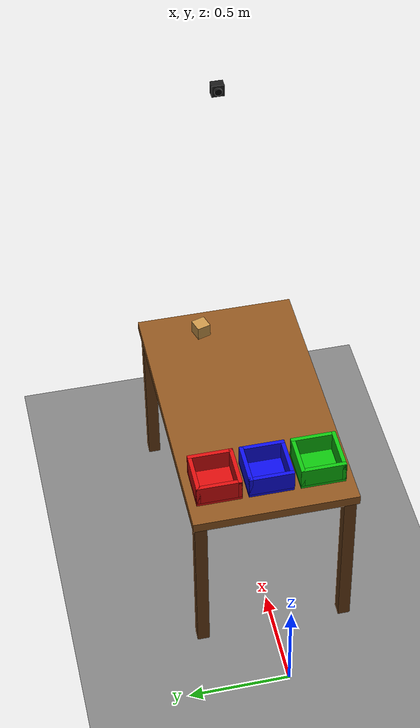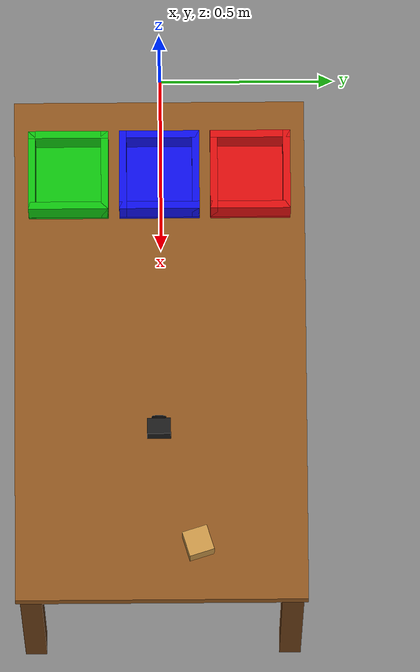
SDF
<sdf version="1.9">
 <world name="panda_sorting_world">
  <plugin filename="gz-sim-physics-system" name="gz::sim::systems::Physics"/>
  <plugin filename="gz-sim-user-commands-system" name="gz::sim::systems::UserCommands"/>
  <plugin filename="gz-sim-scene-broadcaster-system" name="gz::sim::systems::SceneBroadcaster"/>
  <plugin filename="gz-sim-sensors-system" name="gz::sim::systems::Sensors">
   <render_engine>ogre2</render_engine>
  </plugin>
  <physics name="default_physics" type="ode">
   <real_time_update_rate>1000.0</real_time_update_rate>
   <max_step_size>0.001</max_step_size>
   <real_time_factor>1</real_time_factor>
  </physics>
  <light name="sun" type="directional">
   <pose>0 0 10 0 0 0</pose>
   <diffuse>0.9 0.9 0.9 1</diffuse>
   <specular>0.3 0.3 0.3 1</specular>
   <direction>-0.5 0.1 -0.9</direction>
  </light>
  <light name="ambient_fill" type="directional">
   <cast_shadows>false</cast_shadows>
   <pose>0 0 8 0 0 0</pose>
   <diffuse>0.4 0.4 0.45 1</diffuse>
   <specular>0.0 0.0 0.0 1</specular>
   <direction>0.2 0.2 -1.0</direction>
  </light>
  <model name="ground_plane">
   <static>true</static>
   <link name="link">
    <collision name="collision">
     <geometry><plane><normal>0 0 1</normal><size>100 100</size></plane></geometry>
     <surface><friction><ode><mu>1.0</mu><mu2>1.0</mu2></ode></friction></surface>
    </collision>
    <visual name="visual">
     <geometry><plane><normal>0 0 1</normal><size>100 100</size></plane></geometry>
     <material>
      <ambient>0.45 0.45 0.45 1</ambient>
      <diffuse>0.50 0.50 0.50 1</diffuse>
      <specular>0.02 0.02 0.02 1</specular>
     </material>
    </visual>
   </link>
  </model>
  <model name="sorting_table">
   <static>true</static>
   <pose>1.0 0 0 0 0 0</pose>
   <link name="table_top">
    <pose>0 0 0.875 0 0 0</pose>
    <collision name="collision">
     <geometry><box><size>1.4 0.8 0.05</size></box></geometry>
     <surface><friction><ode><mu>0.8</mu><mu2>0.8</mu2></ode></friction></surface>
    </collision>
    <visual name="visual">
     <geometry><box><size>1.4 0.8 0.05</size></box></geometry>
     <material>
      <ambient>0.45 0.28 0.10 1</ambient>
      <diffuse>0.55 0.33 0.12 1</diffuse>
      <specular>0.15 0.10 0.05 1</specular>
      <pbr><metal><roughness>0.85</roughness><metalness>0.0</metalness></metal></pbr>
     </material>
    </visual>
   </link>
   <link name="leg_fr">
    <pose>0.65 -0.36 0.425 0 0 0</pose>
    <collision name="c"><geometry><box><size>0.06 0.06 0.85</size></box></geometry></collision>
    <visual name="v">
     <geometry><box><size>0.06 0.06 0.85</size></box></geometry>
     <material><ambient>0.35 0.20 0.07 1</ambient><diffuse>0.40 0.23 0.08 1</diffuse></material>
    </visual>
   </link>
   <link name="leg_fl">
    <pose>0.65 0.36 0.425 0 0 0</pose>
    <collision name="c"><geometry><box><size>0.06 0.06 0.85</size></box></geometry></collision>
    <visual name="v">
     <geometry><box><size>0.06 0.06 0.85</size></box></geometry>
     <material><ambient>0.35 0.20 0.07 1</ambient><diffuse>0.40 0.23 0.08 1</diffuse></material>
    </visual>
   </link>
   <link name="leg_br">
    <pose>-0.65 -0.36 0.425 0 0 0</pose>
    <collision name="c"><geometry><box><size>0.06 0.06 0.85</size></box></geometry></collision>
    <visual name="v">
     <geometry><box><size>0.06 0.06 0.85</size></box></geometry>
     <material><ambient>0.35 0.20 0.07 1</ambient><diffuse>0.40 0.23 0.08 1</diffuse></material>
    </visual>
   </link>
   <link name="leg_bl">
    <pose>-0.65 0.36 0.425 0 0 0</pose>
    <collision name="c"><geometry><box><size>0.06 0.06 0.85</size></box></geometry></collision>
    <visual name="v">
     <geometry><box><size>0.06 0.06 0.85</size></box></geometry>
     <material><ambient>0.35 0.20 0.07 1</ambient><diffuse>0.40 0.23 0.08 1</diffuse></material>
    </visual>
   </link>
  </model>
  <model name="small_box">
   <pose>1.55 0.10 0.935 0 0 0.3</pose>
   <link name="link">
    <inertial>
     <mass>0.15</mass>
     <inertia><ixx>0.00012</ixx><ixy>0</ixy><ixz>0</ixz><iyy>0.00012</iyy><iyz>0</iyz><izz>0.00012</izz></inertia>
    </inertial>
    <collision name="collision">
     <geometry><box><size>0.07 0.07 0.07</size></box></geometry>
     <surface><friction><ode><mu>0.65</mu><mu2>0.65</mu2></ode></friction></surface>
    </collision>
    <visual name="visual">
     <geometry><box><size>0.07 0.07 0.07</size></box></geometry>
     <material>
      <ambient>0.72 0.52 0.25 1</ambient>
      <diffuse>0.78 0.58 0.28 1</diffuse>
      <specular>0.05 0.04 0.02 1</specular>
      <pbr><metal><roughness>0.95</roughness><metalness>0.0</metalness></metal></pbr>
     </material>
    </visual>
   </link>
  </model>
  <model name="bin_red">
   <static>true</static>
   <pose>0.52 0.25 0.895 0 0 0</pose>
   <link name="base">
    <pose>0 0 0.01 0 0 0</pose>
    <collision name="c"><geometry><box><size>0.22 0.22 0.02</size></box></geometry></collision>
    <visual name="v">
     <geometry><box><size>0.22 0.22 0.02</size></box></geometry>
     <material>
      <ambient>0.80 0.05 0.05 1</ambient>
      <diffuse>0.85 0.05 0.05 1</diffuse>
      <specular>0.3 0.1 0.1 1</specular>
      <pbr><metal><roughness>0.4</roughness><metalness>0.1</metalness></metal></pbr>
     </material>
    </visual>
   </link>
   <link name="wall_back">
    <pose>0 0.10 0.07 0 0 0</pose>
    <collision name="c"><geometry><box><size>0.22 0.02 0.10</size></box></geometry></collision>
    <visual name="v">
     <geometry><box><size>0.22 0.02 0.10</size></box></geometry>
     <material>
      <ambient>0.80 0.05 0.05 1</ambient>
      <diffuse>0.85 0.05 0.05 1</diffuse>
      <specular>0.3 0.1 0.1 1</specular>
     </material>
    </visual>
   </link>
   <link name="wall_front">
    <pose>0 -0.10 0.07 0 0 0</pose>
    <collision name="c"><geometry><box><size>0.22 0.02 0.10</size></box></geometry></collision>
    <visual name="v">
     <geometry><box><size>0.22 0.02 0.10</size></box></geometry>
     <material>
      <ambient>0.80 0.05 0.05 1</ambient>
      <diffuse>0.85 0.05 0.05 1</diffuse>
      <specular>0.3 0.1 0.1 1</specular>
     </material>
    </visual>
   </link>
   <link name="wall_left">
    <pose>-0.10 0 0.07 0 0 0</pose>
    <collision name="c"><geometry><box><size>0.02 0.22 0.10</size></box></geometry></collision>
    <visual name="v">
     <geometry><box><size>0.02 0.22 0.10</size></box></geometry>
     <material>
      <ambient>0.80 0.05 0.05 1</ambient>
      <diffuse>0.85 0.05 0.05 1</diffuse>
      <specular>0.3 0.1 0.1 1</specular>
     </material>
    </visual>
   </link>
   <link name="wall_right">
    <pose>0.10 0 0.07 0 0 0</pose>
    <collision name="c"><geometry><box><size>0.02 0.22 0.10</size></box></geometry></collision>
    <visual name="v">
     <geometry><box><size>0.02 0.22 0.10</size></box></geometry>
     <material>
      <ambient>0.80 0.05 0.05 1</ambient>
      <diffuse>0.85 0.05 0.05 1</diffuse>
      <specular>0.3 0.1 0.1 1</specular>
     </material>
    </visual>
   </link>
  </model>
  <model name="bin_blue">
   <static>true</static>
   <pose>0.52 0.0 0.895 0 0 0</pose>
   <link name="base">
    <pose>0 0 0.01 0 0 0</pose>
    <collision name="c"><geometry><box><size>0.22 0.22 0.02</size></box></geometry></collision>
    <visual name="v">
     <geometry><box><size>0.22 0.22 0.02</size></box></geometry>
     <material>
      <ambient>0.05 0.05 0.85 1</ambient>
      <diffuse>0.05 0.05 0.90 1</diffuse>
      <specular>0.1 0.1 0.35 1</specular>
      <pbr><metal><roughness>0.4</roughness><metalness>0.1</metalness></metal></pbr>
     </material>
    </visual>
   </link>
   <link name="wall_back">
    <pose>0 0.10 0.07 0 0 0</pose>
    <collision name="c"><geometry><box><size>0.22 0.02 0.10</size></box></geometry></collision>
    <visual name="v">
     <geometry><box><size>0.22 0.02 0.10</size></box></geometry>
     <material>
      <ambient>0.05 0.05 0.85 1</ambient>
      <diffuse>0.05 0.05 0.90 1</diffuse>
      <specular>0.1 0.1 0.35 1</specular>
     </material>
    </visual>
   </link>
   <link name="wall_front">
    <pose>0 -0.10 0.07 0 0 0</pose>
    <collision name="c"><geometry><box><size>0.22 0.02 0.10</size></box></geometry></collision>
    <visual name="v">
     <geometry><box><size>0.22 0.02 0.10</size></box></geometry>
     <material>
      <ambient>0.05 0.05 0.85 1</ambient>
      <diffuse>0.05 0.05 0.90 1</diffuse>
      <specular>0.1 0.1 0.35 1</specular>
     </material>
    </visual>
   </link>
   <link name="wall_left">
    <pose>-0.10 0 0.07 0 0 0</pose>
    <collision name="c"><geometry><box><size>0.02 0.22 0.10</size></box></geometry></collision>
    <visual name="v">
     <geometry><box><size>0.02 0.22 0.10</size></box></geometry>
     <material>
      <ambient>0.05 0.05 0.85 1</ambient>
      <diffuse>0.05 0.05 0.90 1</diffuse>
      <specular>0.1 0.1 0.35 1</specular>
     </material>
    </visual>
   </link>
   <link name="wall_right">
    <pose>0.10 0 0.07 0 0 0</pose>
    <collision name="c"><geometry><box><size>0.02 0.22 0.10</size></box></geometry></collision>
    <visual name="v">
     <geometry><box><size>0.02 0.22 0.10</size></box></geometry>
     <material>
      <ambient>0.05 0.05 0.85 1</ambient>
      <diffuse>0.05 0.05 0.90 1</diffuse>
      <specular>0.1 0.1 0.35 1</specular>
     </material>
    </visual>
   </link>
  </model>
  <model name="bin_green">
   <static>true</static>
   <pose>0.52 -0.25 0.895 0 0 0</pose>
   <link name="base">
    <pose>0 0 0.01 0 0 0</pose>
    <collision name="c"><geometry><box><size>0.22 0.22 0.02</size></box></geometry></collision>
    <visual name="v">
     <geometry><box><size>0.22 0.22 0.02</size></box></geometry>
     <material>
      <ambient>0.05 0.70 0.05 1</ambient>
      <diffuse>0.05 0.75 0.05 1</diffuse>
      <specular>0.1 0.35 0.1 1</specular>
      <pbr><metal><roughness>0.4</roughness><metalness>0.1</metalness></metal></pbr>
     </material>
    </visual>
   </link>
   <link name="wall_back">
    <pose>0 0.10 0.07 0 0 0</pose>
    <collision name="c"><geometry><box><size>0.22 0.02 0.10</size></box></geometry></collision>
    <visual name="v">
     <geometry><box><size>0.22 0.02 0.10</size></box></geometry>
     <material>
      <ambient>0.05 0.70 0.05 1</ambient>
      <diffuse>0.05 0.75 0.05 1</diffuse>
      <specular>0.1 0.35 0.1 1</specular>
     </material>
    </visual>
   </link>
   <link name="wall_front">
    <pose>0 -0.10 0.07 0 0 0</pose>
    <collision name="c"><geometry><box><size>0.22 0.02 0.10</size></box></geometry></collision>
    <visual name="v">
     <geometry><box><size>0.22 0.02 0.10</size></box></geometry>
     <material>
      <ambient>0.05 0.70 0.05 1</ambient>
      <diffuse>0.05 0.75 0.05 1</diffuse>
      <specular>0.1 0.35 0.1 1</specular>
     </material>
    </visual>
   </link>
   <link name="wall_left">
    <pose>-0.10 0 0.07 0 0 0</pose>
    <collision name="c"><geometry><box><size>0.02 0.22 0.10</size></box></geometry></collision>
    <visual name="v">
     <geometry><box><size>0.02 0.22 0.10</size></box></geometry>
     <material>
      <ambient>0.05 0.70 0.05 1</ambient>
      <diffuse>0.05 0.75 0.05 1</diffuse>
      <specular>0.1 0.35 0.1 1</specular>
     </material>
    </visual>
   </link>
   <link name="wall_right">
    <pose>0.10 0 0.07 0 0 0</pose>
    <collision name="c"><geometry><box><size>0.02 0.22 0.10</size></box></geometry></collision>
    <visual name="v">
     <geometry><box><size>0.02 0.22 0.10</size></box></geometry>
     <material>
      <ambient>0.05 0.70 0.05 1</ambient>
      <diffuse>0.05 0.75 0.05 1</diffuse>
      <specular>0.1 0.35 0.1 1</specular>
     </material>
    </visual>
   </link>
  </model>
  <model name="overhead_camera">
   <static>true</static>
   <pose>1.55 0 2.40 0 1.5707963 0</pose>
   <link name="camera_link">
    <visual name="body">
     <geometry><box><size>0.06 0.06 0.04</size></box></geometry>
     <material>
      <ambient>0.08 0.08 0.08 1</ambient>
      <diffuse>0.10 0.10 0.10 1</diffuse>
      <specular>0.3 0.3 0.3 1</specular>
      <pbr><metal><roughness>0.4</roughness><metalness>0.6</metalness></metal></pbr>
     </material>
    </visual>
    <visual name="lens">
     <pose>0 0 -0.025 0 0 0</pose>
     <geometry><cylinder><radius>0.018</radius><length>0.01</length></cylinder></geometry>
     <material>
      <ambient>0.02 0.02 0.02 1</ambient>
      <diffuse>0.02 0.02 0.02 1</diffuse>
      <specular>0.8 0.8 0.8 1</specular>
     </material>
    </visual>
    <sensor name="overhead_camera" type="camera">
     <always_on>true</always_on>
     <update_rate>30</update_rate>
     <visualize>false</visualize>
     <topic>/panda/overhead_camera/image_raw</topic>
     <camera>
      <horizontal_fov>1.0472</horizontal_fov>
      <image><width>1280</width><height>720</height><format>R8G8B8</format></image>
      <clip><near>0.05</near><far>10.0</far></clip>
      <noise><type>gaussian</type><mean>0.0</mean><stddev>0.005</stddev></noise>
     </camera>
    </sensor>
   </link>
  </model>
 </world>
</sdf>
